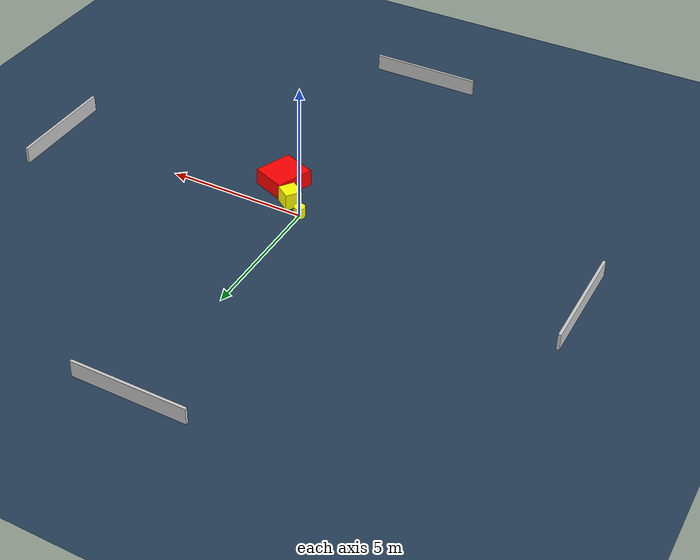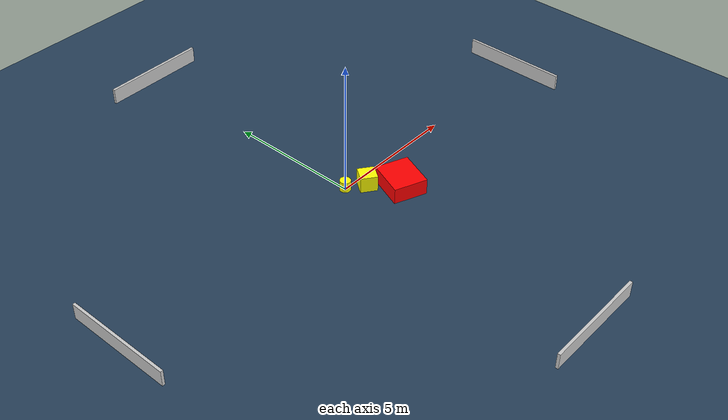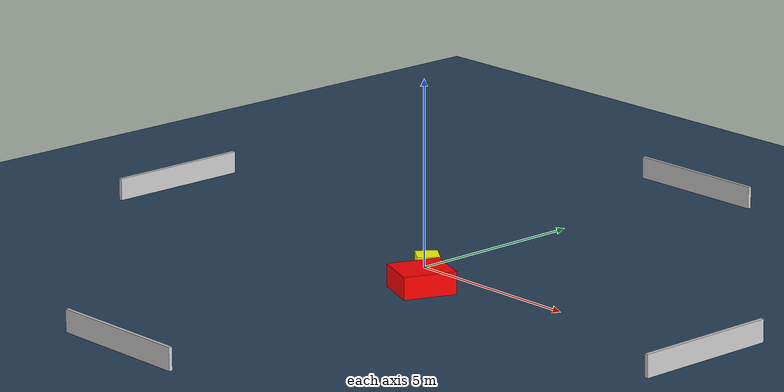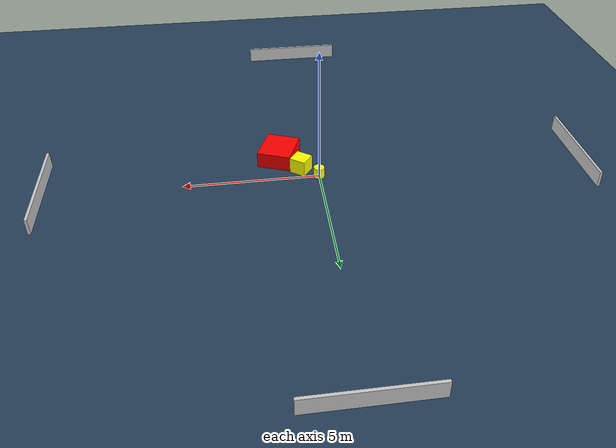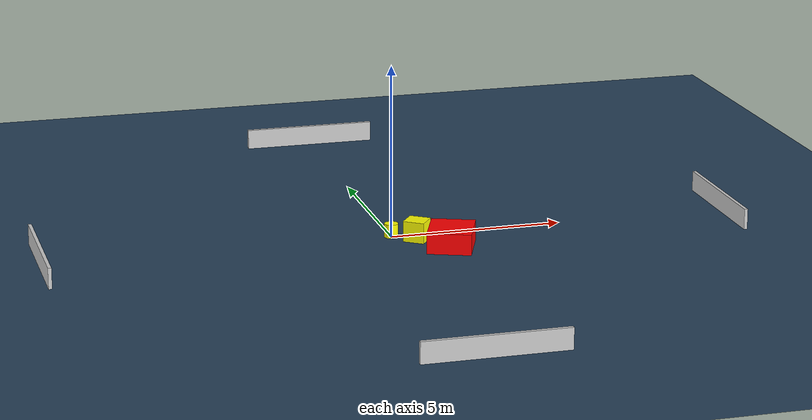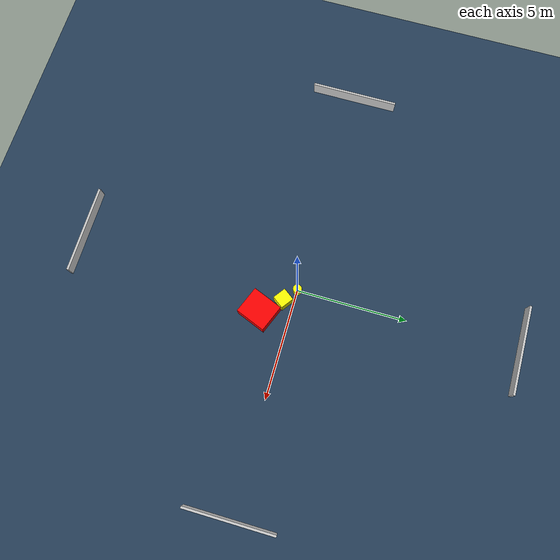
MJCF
<?xml version="1.0" ?>
<mujoco model="generated_environment">
  <option timestep="0.01" integrator="RK4" cone="elliptic"/>
  <default>
    <geom density="1"/>
  </default>
  <asset>
    <texture builtin="gradient" height="3072" name="skybox" rgb1="0.3 0.5 0.7" rgb2="0 0 0" type="skybox" width="512"/>
    <texture builtin="checker" height="300" name="groundplane" rgb1="0.2 0.3 0.4" rgb2="0.1 0.2 0.3" type="2d" width="300"/>
    <material name="groundplane" reflectance="0.2" texrepeat="5 5" texture="groundplane"/>
  </asset>
  <worldbody>
    <light dir="0 0 -1" directional="true" pos="0 0 1.5"/>
    <geom condim="3" friction="0.5 0.005 0.001" material="groundplane" name="floor" pos="0 0 0" size="0 0 0.05" type="plane"/>
    <body name="walls">
      <geom name="wall_1" condim="4" pos="-10.0 0.0 0.3" rgba="0.800000011920929 0.800000011920929 0.800000011920929 1.0" size="0.05 2.0 0.3" type="box"/>
      <geom name="wall_2" condim="4" pos="10.0 0.0 0.3" rgba="0.800000011920929 0.800000011920929 0.800000011920929 1.0" size="0.05 2.0 0.3" type="box"/>
      <geom name="wall_3" condim="4" pos="0.0 -10.0 0.3" rgba="0.800000011920929 0.800000011920929 0.800000011920929 1.0" size="2.0 0.05 0.3" type="box"/>
      <geom name="wall_4" condim="4" pos="0.0 10.0 0.3" rgba="0.800000011920929 0.800000011920929 0.800000011920929 1.0" size="2.0 0.05 0.3" type="box"/>
    </body>
    <body name="robot">
      <joint name="joint_x" type="slide" pos="0 0 0" axis="1 0 0"/>
      <joint name="joint_y" type="slide" pos="0 0 0" axis="0 1 0"/>
      <geom name="robot" type="cylinder" pos="0.0 0.0 0.2" size="0.2 0.2 0.0" mass="5.0" friction="1.0 0.005 0.0001" condim="4" rgba="1.0 1.0 0.0 1.0"/>
    </body>
    <body name="obstacle_1_movable">
      <geom name="obstacle_1_movable" condim="4" pos="0.6259013809777502 -0.4622479631844058 0.3" euler="0 0 323.94131901506955" friction="0.0 0.005 0.001" rgba="1.0 1.0 0.0 1.0" size="0.3096270855219254 0.2975790473997844 0.3" type="box" mass="0.1"/>
      <joint type="free"/>
    </body>
    <body name="obstacle_2_static">
      <geom name="obstacle_2_static" condim="4" pos="1.3779930687927322 -1.3479245131758328 0.3" euler="0 0 158.3593882293728" friction="0.0 0.005 0.001" rgba="1.0 0.0 0.0 1.0" size="0.6288670617336793 0.7074977735371109 0.3" type="box"/>
    </body>
  </worldbody>
  <actuator>
    <motor name="actuator_x" joint="joint_x" gear="1" ctrlrange="-1 1"/>
    <motor name="actuator_y" joint="joint_y" gear="1" ctrlrange="-1 1"/>
  </actuator>
</mujoco>
